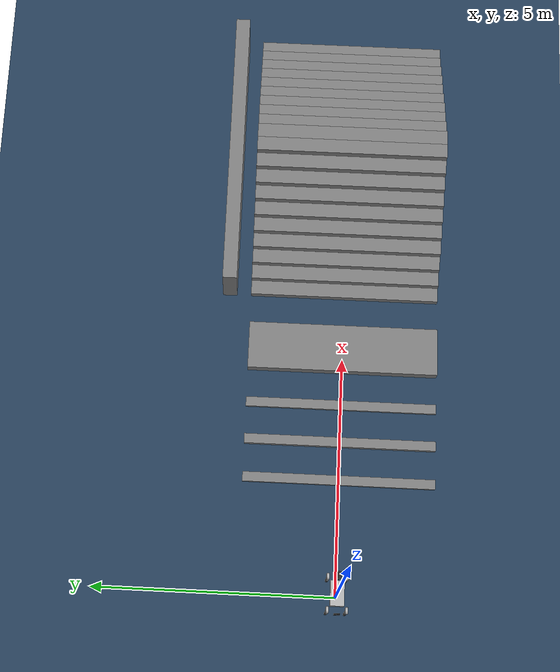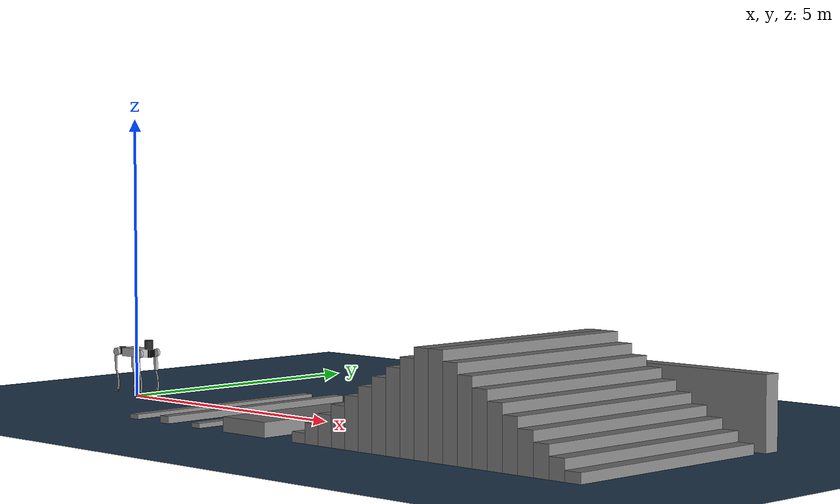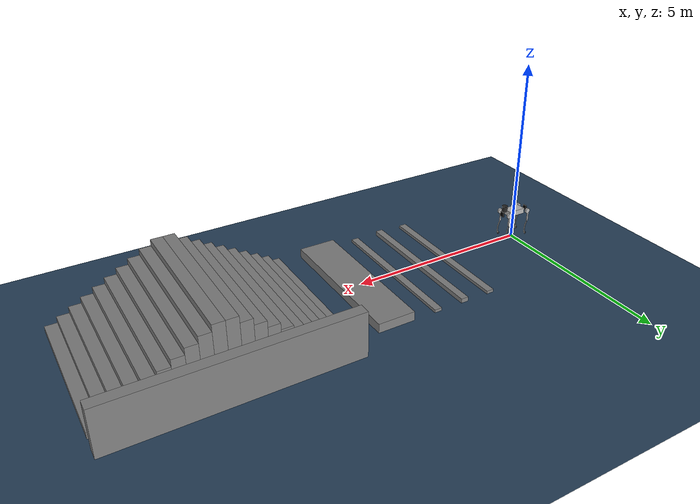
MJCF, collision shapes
<mujoco model="b2 scene">
  <include file="b2.xml"/>

  <statistic center="0 0 0.1" extent="0.8"/>

  <visual>
    <headlight diffuse="0.6 0.6 0.6" ambient="0.3 0.3 0.3" specular="0 0 0"/>
    <rgba haze="0.15 0.25 0.35 1"/>
    <global azimuth="-130" elevation="-20"/>
  </visual>

  <asset>
    <texture type="skybox" builtin="gradient" rgb1="0.3 0.5 0.7" rgb2="0 0 0" width="512" height="3072"/>
    <texture type="2d" name="groundplane" builtin="checker" mark="edge" rgb1="0.2 0.3 0.4" rgb2="0.1 0.2 0.3"
      markrgb="0.8 0.8 0.8" width="300" height="300"/>
    <material name="groundplane" texture="groundplane" texuniform="true" texrepeat="5 5" reflectance="0.2"/>
  </asset>

  <worldbody>
    <light pos="0 0 1.5" dir="0 0 -1" directional="true"/>
    <geom name="floor" size="0 0 0.05" type="plane" material="groundplane"/>

    <!-- Keep a clear spawn area around the robot, then space terrain features out along +x. -->
    <geom name="low_bar_1" pos="2.4 0 0.04" type="box" size="0.1 2 0.04" quat="1 0 0 0"/>
    <geom name="low_bar_2" pos="3.2 0 0.06" type="box" size="0.1 2 0.06" quat="1 0 0 0"/>
    <geom name="low_bar_3" pos="4.0 0 0.04" type="box" size="0.1 2 0.04" quat="1 0 0 0"/>

    <geom name="single_block_25cm" pos="5.2 0 0.125" type="box" size="0.5 2 0.125" quat="1 0 0 0"/>

    <geom name="stair_up_1" pos="6.5 0 0.085" type="box" size="0.15 2 0.085" quat="1 0 0 0"/>
    <geom name="stair_up_2" pos="6.8 0 0.170" type="box" size="0.15 2 0.170" quat="1 0 0 0"/>
    <geom name="stair_up_3" pos="7.1 0 0.255" type="box" size="0.15 2 0.255" quat="1 0 0 0"/>
    <geom name="stair_up_4" pos="7.4 0 0.340" type="box" size="0.15 2 0.340" quat="1 0 0 0"/>
    <geom name="stair_up_5" pos="7.7 0 0.425" type="box" size="0.15 2 0.425" quat="1 0 0 0"/>
    <geom name="stair_up_6" pos="8.0 0 0.510" type="box" size="0.15 2 0.510" quat="1 0 0 0"/>
    <geom name="stair_up_7" pos="8.3 0 0.595" type="box" size="0.15 2 0.595" quat="1 0 0 0"/>
    <geom name="stair_up_8" pos="8.6 0 0.680" type="box" size="0.15 2 0.680" quat="1 0 0 0"/>
    <geom name="stair_up_9" pos="8.9 0 0.765" type="box" size="0.15 2 0.765" quat="1 0 0 0"/>
    <geom name="stair_up_10" pos="9.2 0 0.850" type="box" size="0.15 2 0.850" quat="1 0 0 0"/>
    <geom name="stair_down_1" pos="9.5 0 0.850" type="box" size="0.15 2 0.850" quat="1 0 0 0"/>
    <geom name="stair_down_2" pos="9.8 0 0.765" type="box" size="0.15 2 0.765" quat="1 0 0 0"/>
    <geom name="stair_down_3" pos="10.1 0 0.680" type="box" size="0.15 2 0.680" quat="1 0 0 0"/>
    <geom name="stair_down_4" pos="10.4 0 0.595" type="box" size="0.15 2 0.595" quat="1 0 0 0"/>
    <geom name="stair_down_5" pos="10.7 0 0.510" type="box" size="0.15 2 0.510" quat="1 0 0 0"/>
    <geom name="stair_down_6" pos="11.0 0 0.425" type="box" size="0.15 2 0.425" quat="1 0 0 0"/>
    <geom name="stair_down_7" pos="11.3 0 0.340" type="box" size="0.15 2 0.340" quat="1 0 0 0"/>
    <geom name="stair_down_8" pos="11.6 0 0.255" type="box" size="0.15 2 0.255" quat="1 0 0 0"/>
    <geom name="stair_down_9" pos="11.9 0 0.170" type="box" size="0.15 2 0.170" quat="1 0 0 0"/>
    <geom name="stair_down_10" pos="12.2 0 0.085" type="box" size="0.15 2 0.085" quat="1 0 0 0"/>

    <geom name="stair_side_wall" pos="9.35 2.45 0.45" type="box" size="3.0 0.15 0.75" quat="1 0 0 0"/>
  </worldbody>
</mujoco>

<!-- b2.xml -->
<mujoco model="b2">
  <compiler angle="radian" meshdir="assets" autolimits="true"/>

  <default>
    <default class="b2">
      <geom type="mesh"/>
      <joint damping="1" armature="0.1"/>
      <default class="visual">
        <geom contype="0" conaffinity="0" group="2"/>
      </default>
      <default class="collision">
        <geom group="3" mass="0" density="0"/>
      </default>
      <site size="0.001" rgba="0.5 0.5 0.5 0.3" group="4"/>
    </default>
  </default>

  <asset>
    <mesh name="base_link" file="base_link.obj"/>
    <mesh name="logo_left" file="logo_left.obj"/>
    <mesh name="logo_right" file="logo_right.obj"/>
    <mesh name="unitree_ladar" file="unitree_ladar.obj"/>
    <mesh name="f_dc_link" file="f_dc_link.obj"/>
    <mesh name="r_dc_link" file="r_dc_link.obj"/>
    <mesh name="fake_imu_link" file="fake_imu_link.STL"/>
    <mesh name="fake_head_Link" file="fake_head_Link.STL"/>
    <mesh name="fake_tail_link" file="fake_tail_link.STL"/>
    <mesh name="FL_hip" file="FL_hip.obj"/>
    <mesh name="FL_thigh" file="FL_thigh.obj"/>
    <mesh name="FL_thigh_protect" file="FL_thigh_protect.obj"/>
    <mesh name="FL_calf" file="FL_calf.obj"/>
    <mesh name="FL_foot" file="FL_foot.obj"/>
    <mesh name="FR_hip" file="FR_hip.obj"/>
    <mesh name="FR_thigh" file="FR_thigh.obj"/>
    <mesh name="FR_thigh_protect" file="FR_thigh_protect.obj"/>
    <mesh name="FR_calf" file="FR_calf.obj"/>
    <mesh name="FR_foot" file="FR_foot.obj"/>
    <mesh name="RL_hip" file="RL_hip.obj"/>
    <mesh name="RL_thigh" file="RL_thigh.obj"/>
    <mesh name="RL_thigh_protect" file="RL_thigh_protect.obj"/>
    <mesh name="RL_calf" file="RL_calf.obj"/>
    <mesh name="RL_foot" file="RL_foot.obj"/>
    <mesh name="RR_hip" file="RR_hip.obj"/>
    <mesh name="RR_thigh" file="RR_thigh.obj"/>
    <mesh name="RR_thigh_protect" file="RR_thigh_protect.obj"/>
    <mesh name="RR_calf" file="RR_calf.obj"/>
    <mesh name="RR_foot" file="RR_foot.obj"/>
    <mesh name="f_oc_link" file="f_oc_link.obj"/>
    <mesh name="r_oc_link" file="r_oc_link.obj"/>
  </asset>

  <extension>
    <plugin plugin="mujoco.sensor.ray_caster"/>
    <plugin plugin="mujoco.sensor.ray_caster_camera"/>
  </extension>

  <worldbody>
    <body name="base_link" pos="0 0 0.8" childclass="b2">
      <inertial pos="0.0212868 0.0045819 0.0106169" quat="0.00178111 0.675412 -0.000262894 0.737438" mass="40.8426" diaginertia="1.73786 1.66448 0.343734"/>
      <joint name="floating_base_joint" type="free"/>
      <geom type="mesh" contype="0" conaffinity="0" group="1" density="0" rgba="0.7 0.7 0.7 1" mesh="base_link"/>
      <geom size="0.25 0.14 0.075" type="box" rgba="0.7 0.7 0.7 1" class="collision"/>
      <geom type="mesh" contype="0" conaffinity="0" group="1" density="0" rgba="1 1 1 1" mesh="logo_left"/>
      <geom type="mesh" contype="0" conaffinity="0" group="1" density="0" rgba="1 1 1 1" mesh="logo_right"/>
      <geom pos="0.34218 0 0.17851" type="mesh" contype="0" conaffinity="0" group="1" density="0" rgba="0.15 0.15 0.15 1" mesh="unitree_ladar"/>
      <geom size="0.076 0.08" pos="0.34218 0 0.15851" type="cylinder" rgba="0.15 0.15 0.15 1" class="collision"/>
      <geom pos="0.841724 -4.57659e-06 0.130379" quat="0.00244632 3.13845e-06 0.999997 1.29099e-06" type="mesh" contype="0" conaffinity="0" group="1" density="0" rgba="0 0 0 1" mesh="f_dc_link"/>
      <geom pos="-0.378319 0.000200109 -0.379902" quat="-1.30076e-06 -0.708662 5.35065e-07 0.705548" type="mesh" contype="0" conaffinity="0" group="1" density="0" rgba="0 0 0 1" mesh="r_dc_link"/>
      <geom pos="0 -0.02341 0.04927" type="mesh" contype="0" conaffinity="0" group="1" density="0" rgba="0 0 0 1" mesh="fake_imu_link"/>
      <geom type="mesh" contype="0" conaffinity="0" group="1" density="0" rgba="0 0 0 1" mesh="fake_head_Link"/>
      <geom size="0.02 0.06 0.07" pos="0.41 0 0.005" type="box" rgba="0 0 0 1" class="collision"/>
      <geom type="mesh" contype="0" conaffinity="0" group="1" density="0" rgba="0 0 0 1" mesh="fake_tail_link"/>
      <geom size="0.0125 0.06 0.07" pos="-0.405 0 0.005" type="box" rgba="0 0 0 1" class="collision"/>
      <geom pos="0.84158 -0.0134347 -0.0134347" quat="-3.89602e-06 1.29867e-06 0.707107 -0.707107" type="mesh" contype="0" conaffinity="0" group="1" density="0" rgba="0 0 0 1" mesh="f_oc_link"/>
      <geom pos="-0.00451008 0.0252504 -0.0262476" quat="0.707107 -0.707107 -1.29867e-06 -1.29867e-06" type="mesh" contype="0" conaffinity="0" group="1" density="0" rgba="0 0 0 1" mesh="r_oc_link"/>
      <site name="imu" pos="0 -0.02341 0.04927"/>
      <camera name="ray_caster" pos="0.0 0.0 1.0" quat="0.707107 0 0 0.707107"/>
      <camera name="ray_caster_camera" pos="0.415 0.02 0.05" xyaxes="0 -1 0 0.707 0 0.707" />
      <body name="FL_hip" pos="0.3285 0.072 0">
        <inertial pos="-0.00829923 -0.00998502 0.000235465" quat="0.525168 0.518964 0.477213 0.476595" mass="2.5294" diaginertia="0.00485541 0.00370618 0.00277182"/>
        <joint name="FL_hip_joint" pos="0 0 0" axis="1 0 0" range="-0.87 0.87"/>
        <geom type="mesh" contype="0" conaffinity="0" group="1" density="0" rgba="0.7 0.7 0.7 1" mesh="FL_hip"/>
        <geom size="0.07 0.025" pos="0 0.12 0" quat="0.707107 0.707107 0 0" type="cylinder" rgba="0.7 0.7 0.7 1" class="collision"/>
        <body name="FL_thigh" pos="0 0.11973 0">
          <inertial pos="-0.00418663 -0.0366068 -0.0432737" quat="0.884916 0.0880602 -0.00896728 0.457262" mass="7.4554" diaginertia="0.085057 0.0842843 0.0112538"/>
          <joint name="FL_thigh_joint" pos="0 0 0" axis="0 1 0" range="-0.94 4.69"/>
          <geom type="mesh" contype="0" conaffinity="0" group="1" density="0" rgba="0.7 0.7 0.7 1" mesh="FL_thigh"/>
          <geom size="0.16 0.02225 0.027" pos="-0.025 0 -0.16" quat="0.707388 0 0.706825 0" type="box" rgba="0.7 0.7 0.7 1" class="collision"/>
          <geom type="mesh" contype="0" conaffinity="0" group="1" density="0" rgba="0.65 0.68 0.65 1" mesh="FL_thigh_protect"/>
          <body name="FL_calf" pos="0 -8.6984e-05 -0.35">
            <inertial pos="0.0096848 1.25758e-05 -0.158987" quat="0.70753 -0.00625821 -0.00634277 0.706627" mass="0.679123" diaginertia="0.0162494 0.0161173 0.000398115"/>
            <joint name="FL_calf_joint" pos="0 0 0" axis="0 1 0" range="-2.82 -0.43"/>
            <geom type="mesh" contype="0" conaffinity="0" group="1" density="0" rgba="0.7 0.7 0.7 1" mesh="FL_calf"/>
            <geom size="0.05 0.01225 0.009" pos="-0.002 0 -0.03" quat="0.825336 0 0.564642 0" type="box" rgba="0.7 0.7 0.7 1" class="collision"/>
            <geom size="0.05 0.01225 0.009" pos="0.022 0 -0.1" quat="0.780707 0 0.624897 0" type="box" rgba="0.7 0.7 0.7 1" class="collision"/>
            <geom size="0.075 0.01225 0.0075" pos="0.036 0 -0.225" quat="0.721382 0 0.692537 0" type="box" rgba="0.7 0.7 0.7 1" class="collision"/>
            <geom size="0.025 0.014 0.0175" pos="0.023 0 -0.31" quat="0.540302 0 0.841471 0" type="box" rgba="0.7 0.7 0.7 1" class="collision"/>
            <geom pos="0 8.6986e-05 0" type="mesh" contype="0" conaffinity="0" group="1" density="0" rgba="0.15 0.15 0.15 1" mesh="FL_foot" friction="0.4 0.005 0.0001"/>
            <geom size="0.032" pos="0 8.6986e-05 -0.35" quat="0.707388 0.706825 0 0" type="sphere" rgba="0.15 0.15 0.15 1" class="collision" friction="0.4 0.005 0.0001"/>
          </body>
        </body>
      </body>
      <body name="FR_hip" pos="0.3285 -0.072 0">
        <inertial pos="-0.00829923 0.00998502 0.000235465" quat="0.476595 0.477213 0.518964 0.525168" mass="2.5294" diaginertia="0.00485541 0.00370618 0.00277182"/>
        <joint name="FR_hip_joint" pos="0 0 0" axis="1 0 0" range="-0.87 0.87"/>
        <geom type="mesh" contype="0" conaffinity="0" group="1" density="0" rgba="0.7 0.7 0.7 1" mesh="FR_hip"/>
        <geom size="0.07 0.025" pos="0 -0.12 0" quat="0.707107 0.707107 0 0" type="cylinder" rgba="0.7 0.7 0.7 1" class="collision"/>
        <body name="FR_thigh" pos="0 -0.11973 0">
          <inertial pos="-0.00418663 0.0366068 -0.0432737" quat="0.457262 -0.00896728 0.0880602 0.884916" mass="7.4554" diaginertia="0.085057 0.0842843 0.0112538"/>
          <joint name="FR_thigh_joint" pos="0 0 0" axis="0 1 0" range="-0.94 4.69"/>
          <geom type="mesh" contype="0" conaffinity="0" group="1" density="0" rgba="0.7 0.7 0.7 1" mesh="FR_thigh"/>
          <geom size="0.125 0.014 0.02" pos="-0.03 0 -0.2" quat="0.707388 0 0.706825 0" type="box" rgba="0.7 0.7 0.7 1" class="collision"/>
          <geom type="mesh" contype="0" conaffinity="0" group="1" density="0" rgba="0.65 0.68 0.65 1" mesh="FR_thigh_protect"/>
          <body name="FR_calf" pos="0 8.6986e-05 -0.35">
            <inertial pos="0.0096848 0 -0.158987" quat="0.707079 -0.00630052 -0.00630052 0.707079" mass="0.679123" diaginertia="0.0162494 0.0161173 0.000398115"/>
            <joint name="FR_calf_joint" pos="0 0 0" axis="0 1 0" range="-2.82 -0.43"/>
            <geom type="mesh" contype="0" conaffinity="0" group="1" density="0" rgba="0.7 0.7 0.7 1" mesh="FR_calf"/>
            <geom size="0.05 0.01225 0.009" pos="-0.002 0 -0.03" quat="0.825336 0 0.564642 0" type="box" rgba="0.7 0.7 0.7 1" class="collision"/>
            <geom size="0.05 0.01225 0.009" pos="0.022 0 -0.1" quat="0.780707 0 0.624897 0" type="box" rgba="0.7 0.7 0.7 1" class="collision"/>
            <geom size="0.075 0.01225 0.0075" pos="0.036 0 -0.225" quat="0.721382 0 0.692537 0" type="box" rgba="0.7 0.7 0.7 1" class="collision"/>
            <geom size="0.025 0.014 0.0175" pos="0.023 0 -0.31" quat="0.540302 0 0.841471 0" type="box" rgba="0.7 0.7 0.7 1" class="collision"/>
            <geom type="mesh" contype="0" conaffinity="0" group="1" density="0" rgba="0.15 0.15 0.15 1" mesh="FR_foot" friction="0.4 0.005 0.0001"/>
            <geom size="0.032" pos="0 8.6986e-05 -0.35" quat="0.707388 0.706825 0 0" type="sphere" rgba="0.15 0.15 0.15 1" class="collision" friction="0.4 0.005 0.0001"/>
          </body>
        </body>
      </body>
      <body name="RL_hip" pos="-0.3285 0.072 0">
        <inertial pos="0.00829923 -0.00998502 0.000235465" quat="0.477213 0.476595 0.525168 0.518964" mass="2.5294" diaginertia="0.00485541 0.00370618 0.00277182"/>
        <joint name="RL_hip_joint" pos="0 0 0" axis="1 0 0" range="-0.87 0.87"/>
        <geom type="mesh" contype="0" conaffinity="0" group="1" density="0" rgba="0.7 0.7 0.7 1" mesh="RL_hip"/>
        <geom size="0.07 0.025" pos="0 0.12 0" quat="0.707107 0.707107 0 0" type="cylinder" rgba="0.7 0.7 0.7 1" class="collision"/>
        <body name="RL_thigh" pos="0 0.11973 0">
          <inertial pos="-0.00418663 -0.0366068 -0.0432737" quat="0.884916 0.0880602 -0.00896728 0.457262" mass="7.4554" diaginertia="0.085057 0.0842843 0.0112538"/>
          <joint name="RL_thigh_joint" pos="0 0 0" axis="0 1 0" range="-0.94 4.69"/>
          <geom type="mesh" contype="0" conaffinity="0" group="1" density="0" rgba="0.7 0.7 0.7 1" mesh="RL_thigh"/>
          <geom size="0.125 0.014 0.02" pos="-0.03 0 -0.2" quat="0.707388 0 0.706825 0" type="box" rgba="0.7 0.7 0.7 1" class="collision"/>
          <geom type="mesh" contype="0" conaffinity="0" group="1" density="0" rgba="0.65 0.68 0.65 1" mesh="RL_thigh_protect"/>
          <body name="RL_calf" pos="0 -8.6984e-05 -0.35">
            <inertial pos="0.0096848 1.25758e-05 -0.158987" quat="0.70753 -0.00625821 -0.00634277 0.706627" mass="0.679123" diaginertia="0.0162494 0.0161173 0.000398115"/>
            <joint name="RL_calf_joint" pos="0 0 0" axis="0 1 0" range="-2.82 -0.43"/>
            <geom type="mesh" contype="0" conaffinity="0" group="1" density="0" rgba="0.7 0.7 0.7 1" mesh="RL_calf"/>
            <geom size="0.05 0.01225 0.009" pos="-0.002 0 -0.03" quat="0.825336 0 0.564642 0" type="box" rgba="0.7 0.7 0.7 1" class="collision"/>
            <geom size="0.05 0.01225 0.009" pos="0.022 0 -0.1" quat="0.780707 0 0.624897 0" type="box" rgba="0.7 0.7 0.7 1" class="collision"/>
            <geom size="0.075 0.01225 0.0075" pos="0.036 0 -0.225" quat="0.721382 0 0.692537 0" type="box" rgba="0.7 0.7 0.7 1" class="collision"/>
            <geom size="0.025 0.014 0.0175" pos="0.023 0 -0.31" quat="0.540302 0 0.841471 0" type="box" rgba="0.7 0.7 0.7 1" class="collision"/>
            <geom pos="0 8.6986e-05 0" type="mesh" contype="0" conaffinity="0" group="1" density="0" rgba="0.15 0.15 0.15 1" mesh="RL_foot" friction="0.4 0.005 0.0001"/>
            <geom size="0.032" pos="0 8.6986e-05 -0.35" quat="0.707388 0.706825 0 0" type="sphere" rgba="0.15 0.15 0.15 1" class="collision" friction="0.4 0.005 0.0001"/>
          </body>
        </body>
      </body>
      <body name="RR_hip" pos="-0.3285 -0.072 0">
        <inertial pos="0.00829923 -0.00825992 0.000235465" quat="0.524846 0.53164 0.469132 0.470967" mass="2.5294" diaginertia="0.0048658 0.00378576 0.00284106"/>
        <joint name="RR_hip_joint" pos="0 0 0" axis="1 0 0" range="-0.87 0.87"/>
        <geom type="mesh" contype="0" conaffinity="0" group="1" density="0" rgba="0.7 0.7 0.7 1" mesh="RR_hip"/>
        <geom size="0.07 0.025" pos="0 -0.12 0" quat="0.707107 0.707107 0 0" type="cylinder" rgba="0.7 0.7 0.7 1" class="collision"/>
        <body name="RR_thigh" pos="0 -0.11973 0">
          <inertial pos="-0.00418663 0.0366068 -0.0432737" quat="0.457262 -0.00896728 0.0880602 0.884916" mass="7.4554" diaginertia="0.085057 0.0842843 0.0112538"/>
          <joint name="RR_thigh_joint" pos="0 0 0" axis="0 1 0" range="-0.94 4.69"/>
          <geom type="mesh" contype="0" conaffinity="0" group="1" density="0" rgba="0.7 0.7 0.7 1" mesh="RR_thigh"/>
          <geom size="0.125 0.014 0.02" pos="-0.03 0 -0.2" quat="0.707388 0 0.706825 0" type="box" rgba="0.7 0.7 0.7 1" class="collision"/>
          <geom type="mesh" contype="0" conaffinity="0" group="1" density="0" rgba="0.65 0.68 0.65 1" mesh="RR_thigh_protect"/>
          <body name="RR_calf" pos="0 8.6986e-05 -0.35">
            <inertial pos="0.0096848 -1.25756e-05 -0.158987" quat="0.706627 -0.00634277 -0.00625821 0.70753" mass="0.679123" diaginertia="0.0162494 0.0161173 0.000398115"/>
            <joint name="RR_calf_joint" pos="0 0 0" axis="0 1 0" range="-2.82 -0.43"/>
            <geom type="mesh" contype="0" conaffinity="0" group="1" density="0" rgba="0.7 0.7 0.7 1" mesh="RR_calf"/>
            <geom size="0.05 0.01225 0.009" pos="-0.002 0 -0.03" quat="0.825336 0 0.564642 0" type="box" rgba="0.7 0.7 0.7 1" class="collision"/>
            <geom size="0.05 0.01225 0.009" pos="0.022 0 -0.1" quat="0.780707 0 0.624897 0" type="box" rgba="0.7 0.7 0.7 1" class="collision"/>
            <geom size="0.075 0.01225 0.0075" pos="0.036 0 -0.225" quat="0.721382 0 0.692537 0" type="box" rgba="0.7 0.7 0.7 1" class="collision"/>
            <geom size="0.025 0.014 0.0175" pos="0.023 0 -0.31" quat="0.540302 0 0.841471 0" type="box" rgba="0.7 0.7 0.7 1" class="collision"/>
            <geom pos="0 -8.6984e-05 0" type="mesh" contype="0" conaffinity="0" group="1" density="0" rgba="0.15 0.15 0.15 1" mesh="RR_foot" friction="0.4 0.005 0.0001"/>
            <geom size="0.032" pos="0 8.6986e-05 -0.35" quat="0.707388 0.706825 0 0" type="sphere" rgba="0.15 0.15 0.15 1" class="collision" friction="0.4 0.005 0.0001"/>
          </body>
        </body>
      </body>
    </body>
  </worldbody>

  <actuator>
    <motor class="b2" ctrlrange="-200 200"  name="FR_hip" joint="FR_hip_joint"/>
    <motor class="b2" ctrlrange="-200 200"  name="FR_thigh" joint="FR_thigh_joint"/>
    <motor class="b2" ctrlrange="-300 300"  name="FR_calf" joint="FR_calf_joint"/>
    <motor class="b2" ctrlrange="-200 200"  name="FL_hip" joint="FL_hip_joint"/>
    <motor class="b2" ctrlrange="-200 200"  name="FL_thigh" joint="FL_thigh_joint"/>
    <motor class="b2" ctrlrange="-300 300" name="FL_calf" joint="FL_calf_joint"/>
    <motor class="b2" ctrlrange="-200 200"  name="RR_hip" joint="RR_hip_joint"/>
    <motor class="b2" ctrlrange="-200 200"  name="RR_thigh" joint="RR_thigh_joint"/>
    <motor class="b2" ctrlrange="-300 300" name="RR_calf" joint="RR_calf_joint"/>
    <motor class="b2" ctrlrange="-200 200"  name="RL_hip" joint="RL_hip_joint"/>
    <motor class="b2" ctrlrange="-200 200"  name="RL_thigh" joint="RL_thigh_joint"/>
    <motor class="b2" ctrlrange="-300 300" name="RL_calf" joint="RL_calf_joint"/>
  </actuator>

  <sensor>
    <jointpos name="FR_hip_pos" joint="FR_hip_joint" />
    <jointpos name="FR_thigh_pos" joint="FR_thigh_joint" />
    <jointpos name="FR_calf_pos" joint="FR_calf_joint" />
    <jointpos name="FL_hip_pos" joint="FL_hip_joint" />
    <jointpos name="FL_thigh_pos" joint="FL_thigh_joint" />
    <jointpos name="FL_calf_pos" joint="FL_calf_joint" />
    <jointpos name="RR_hip_pos" joint="RR_hip_joint" />
    <jointpos name="RR_thigh_pos" joint="RR_thigh_joint" />
    <jointpos name="RR_calf_pos" joint="RR_calf_joint" />
    <jointpos name="RL_hip_pos" joint="RL_hip_joint" />
    <jointpos name="RL_thigh_pos" joint="RL_thigh_joint" />
    <jointpos name="RL_calf_pos" joint="RL_calf_joint" />

    <jointvel name="FR_hip_vel" joint="FR_hip_joint" />
    <jointvel name="FR_thigh_vel" joint="FR_thigh_joint" />
    <jointvel name="FR_calf_vel" joint="FR_calf_joint" />
    <jointvel name="FL_hip_vel" joint="FL_hip_joint" />
    <jointvel name="FL_thigh_vel" joint="FL_thigh_joint" />
    <jointvel name="FL_calf_vel" joint="FL_calf_joint" />
    <jointvel name="RR_hip_vel" joint="RR_hip_joint" />
    <jointvel name="RR_thigh_vel" joint="RR_thigh_joint" />
    <jointvel name="RR_calf_vel" joint="RR_calf_joint" />
    <jointvel name="RL_hip_vel" joint="RL_hip_joint" />
    <jointvel name="RL_thigh_vel" joint="RL_thigh_joint" />
    <jointvel name="RL_calf_vel" joint="RL_calf_joint" />

    <jointactuatorfrc name="FR_hip_torque" joint="FR_hip_joint" noise="0.01" />
    <jointactuatorfrc name="FR_thigh_torque" joint="FR_thigh_joint" noise="0.01" />
    <jointactuatorfrc name="FR_calf_torque" joint="FR_calf_joint" noise="0.01" />
    <jointactuatorfrc name="FL_hip_torque" joint="FL_hip_joint" noise="0.01" />
    <jointactuatorfrc name="FL_thigh_torque" joint="FL_thigh_joint" noise="0.01" />
    <jointactuatorfrc name="FL_calf_torque" joint="FL_calf_joint" noise="0.01" />
    <jointactuatorfrc name="RR_hip_torque" joint="RR_hip_joint" noise="0.01" />
    <jointactuatorfrc name="RR_thigh_torque" joint="RR_thigh_joint" noise="0.01" />
    <jointactuatorfrc name="RR_calf_torque" joint="RR_calf_joint" noise="0.01" />
    <jointactuatorfrc name="RL_hip_torque" joint="RL_hip_joint" noise="0.01" />
    <jointactuatorfrc name="RL_thigh_torque" joint="RL_thigh_joint" noise="0.01" />
    <jointactuatorfrc name="RL_calf_torque" joint="RL_calf_joint" noise="0.01" />

    <framequat name="imu_quat" objtype="site" objname="imu" />
    <gyro name="imu_gyro" site="imu" />
    <accelerometer name="imu_acc" site="imu" />

    <framepos name="frame_pos" objtype="site" objname="imu" />
    <framelinvel name="frame_vel" objtype="site" objname="imu" />

    <plugin name="depth_camera" plugin="mujoco.sensor.ray_caster_camera" objtype="camera"
            objname="ray_caster_camera">
      <config key="enabled" value="0"/>
      <config key="visualize" value="1"/>
      <config key="focal_length" value="0.00965" />
      <config key="horizontal_aperture" value="0.01426421959071792" />
      <config key="size" value="64 48" />
      <config key="dis_range" value="0.3 3.0" />
      <config key="vertical_aperture" value="0.010698164693038442" />
      <config key="compute_time_log" value="0" />
      <config key="n_step_update" value="5" />
      <config key="draw_deep_ray_ids" value="0 10 0 0.5 0.5 0.5 0 31 63 3071" />
      <config key="draw_hip_point" value="1 0.02" />
      <config key="sensor_data_types" value="pos_b image" />
      <config key="noise_type" value="uniform" />
      <config key="noise_cfg" value="-0.1 0.1 1" />
      <config key="geomgroup" value="1 0 0 0 0 0" />
    </plugin>
    <framepos name="depth_camera_pos" objtype="camera" objname="ray_caster_camera"/>
    <framequat name="depth_camera_quat" objtype="camera" objname="ray_caster_camera"/>

    <plugin name="height_scan" plugin="mujoco.sensor.ray_caster"
            objtype="camera" objname="ray_caster">
      <config key="enabled" value="0"/>
      <config key="visualize" value="1"/>
      <config key="resolution" value="0.1"/>
      <config key="size" value="1.6 1.2"/>
      <config key="dis_range" value="0.1 10"/>
      <config key="type" value="yaw"/>
      <config key="sensor_data_types" value="pos_b"/>
      <config key="draw_hip_point" value="1 0.02" />
      <config key="geomgroup" value="1 0 0 0 0 0" />
    </plugin>
    <framepos name="ray_caster_pos" objtype="camera" objname="ray_caster"/>
    <framequat name="ray_caster_quat" objtype="camera" objname="ray_caster"/>
  </sensor>

  <keyframe>
    <key name="home" qpos="0 0 0.5 1 0 0 0 0 1.28 -2.84 0 1.28 -2.84 0 1.28 -2.84 0 1.28 -2.84"
      ctrl="0 1.28 -2.84 0 1.28 -2.84 0 1.28 -2.84 0 1.28 -2.84"/>
  </keyframe>

</mujoco>
